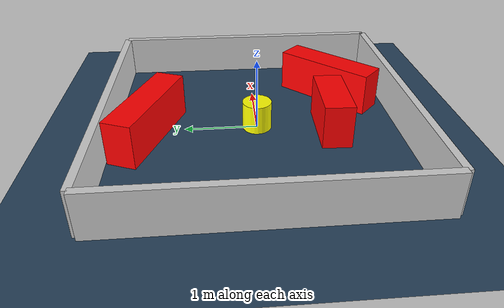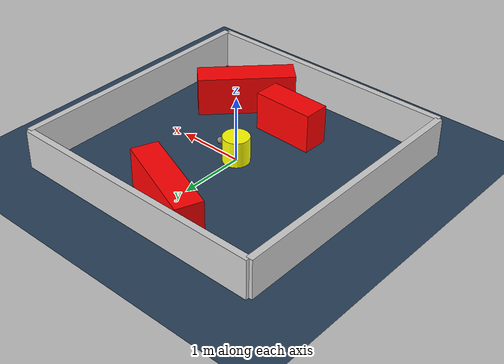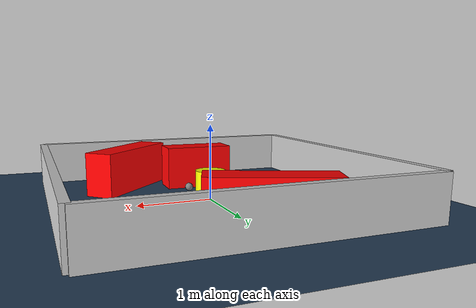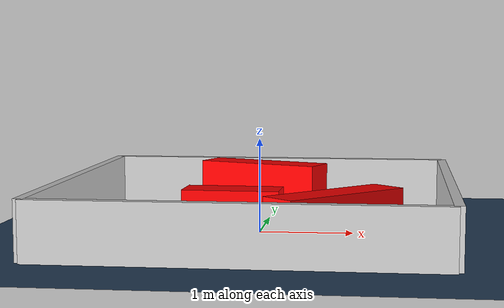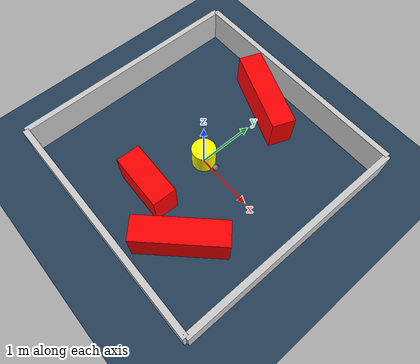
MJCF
<?xml version="1.0" ?>
<mujoco model="generated_environment">
  <option timestep="0.01" integrator="RK4" cone="elliptic"/>
  <default>
    <geom density="1"/>
  </default>
  <asset>
    <texture builtin="gradient" height="3072" rgb1="0.3 0.5 0.7" rgb2="0 0 0" type="skybox" width="512"/>
    <texture builtin="checker" height="300" mark="edge" markrgb="0.8 0.8 0.8" name="groundplane" rgb1="0.2 0.3 0.4" rgb2="0.1 0.2 0.3" type="2d" width="300"/>
    <material name="groundplane" reflectance="0.2" texrepeat="5 5" texture="groundplane" texuniform="true"/>
    <material name="robot" rgba="0.0 1.0 0.0 1"/>
  </asset>
  <worldbody>
    <light dir="0 0 -1" directional="true" pos="0 0 1.5"/>
    <geom condim="4" friction="1.0 0.005 0.001" material="groundplane" name="floor" size="0 0 0.05" type="plane"/>
    <body name="walls">
      <geom name="wall_1" condim="4" pos="-2.0 0.0 0.3" rgba="0.800000011920929 0.800000011920929 0.800000011920929 1.0" size="0.05 2.0 0.3" type="box"/>
      <geom name="wall_2" condim="4" pos="2.0 0.0 0.3" rgba="0.800000011920929 0.800000011920929 0.800000011920929 1.0" size="0.05 2.0 0.3" type="box"/>
      <geom name="wall_3" condim="4" pos="0.0 -2.0 0.3" rgba="0.800000011920929 0.800000011920929 0.800000011920929 1.0" size="2.0 0.05 0.3" type="box"/>
      <geom name="wall_4" condim="4" pos="0.0 2.0 0.3" rgba="0.800000011920929 0.800000011920929 0.800000011920929 1.0" size="2.0 0.05 0.3" type="box"/>
    </body>
    <body name="robot">
      <joint name="joint_x" type="slide" pos="0 0 0" axis="1 0 0"/>
      <joint name="joint_y" type="slide" pos="0 0 0" axis="0 1 0"/>
      <geom name="robot" type="sphere" pos="0.3 0.0 0.2" size="0.05" mass="5." friction="1.0 0.005 0.0001" condim="4" rgba="0.5 0.5 0.5 1.0"/>
      <site name="sensor_ball"/>
    </body>
    <body name="obstacle_movable_1">
      <geom name="obstacle_movable_1" condim="4" pos="0.0 0.0 0.2" euler="0 0 0.0" friction="1.0 0.005 0.001" rgba="1.0 1.0 0.0 1.0" size="0.2 0.2 0.0" type="cylinder" mass="0.1"/>
      <joint type="free"/>
    </body>
    <body name="obstacle_2_static">
      <geom name="obstacle_2_static" condim="4" pos="-0.12515856361415612 1.4787645287980713 0.3" euler="0 0 158.4473157887719" friction="1.0 0.005 0.001" rgba="1 0 0 1" size="0.739933388100177 0.2 0.3" type="box"/>
    </body>
    <body name="obstacle_3_static">
      <geom name="obstacle_3_static" condim="4" pos="-0.14688535602873376 -1.0169103042290315 0.3" euler="0 0 358.5688334334689" friction="1.0 0.005 0.001" rgba="1 0 0 1" size="0.47743329520175204 0.2 0.3" type="box"/>
    </body>
    <body name="obstacle_4_static">
      <geom name="obstacle_4_static" condim="4" pos="0.8631375659232807 -1.178059877993126 0.3" euler="0 0 46.08977468604585" friction="1.0 0.005 0.001" rgba="1 0 0 1" size="0.7329805423685624 0.2 0.3" type="box"/>
    </body>
  </worldbody>
  <actuator>
    <motor name="actuator_x" joint="joint_x" gear="1" ctrlrange="-1 1"/>
    <motor name="actuator_y" joint="joint_y" gear="1" ctrlrange="-1 1"/>
  </actuator>
</mujoco>
